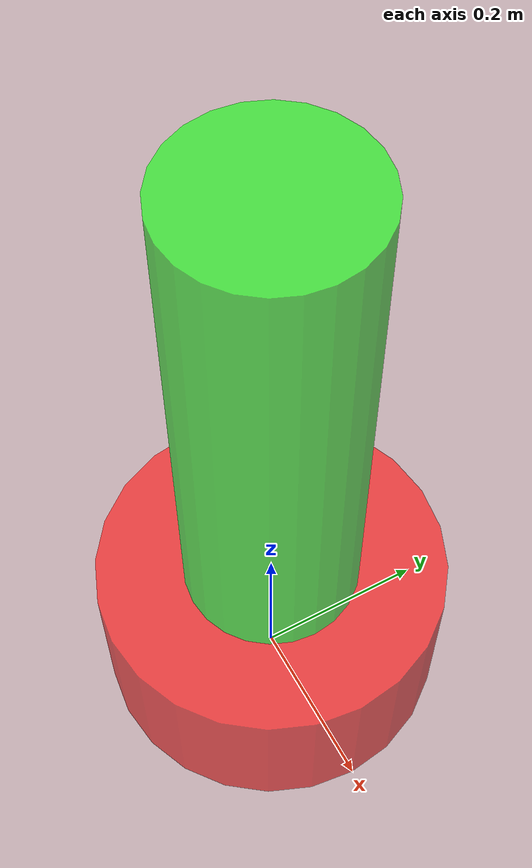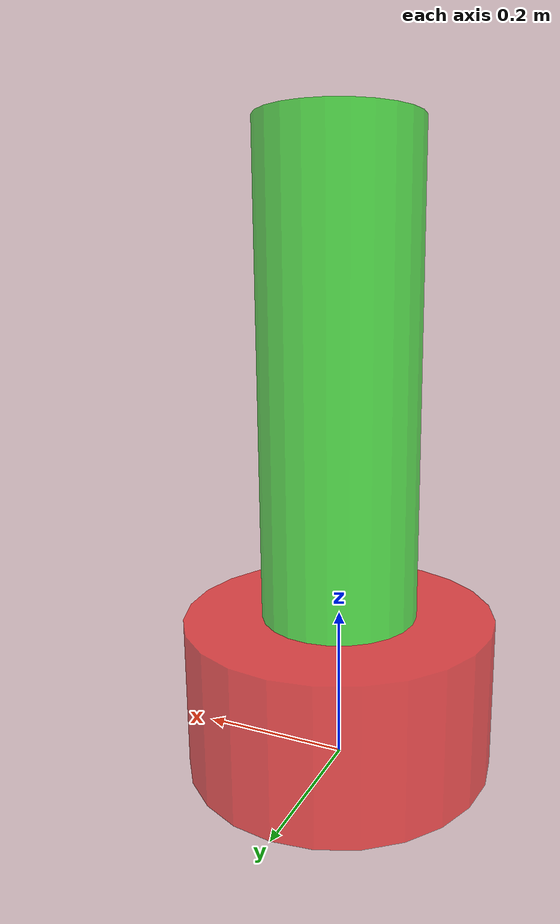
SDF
<sdf version='1.6'>
<world name='default'>
  <model name='simple_screw_joint_sdf'>
    <plugin name='set_joint_velocity_plugin' filename='libSetJointVelocityPlugin.so'/>
    <!-- A simple robot with 2 links and 1 screw joint -->

    <link name='link_0'>
      <pose frame=''>0 0 0.0 0 -0 0</pose>
      <inertial>
        <pose frame=''>0 0 0.1 0 -0 0</pose>
        <mass>0.01</mass>
        <inertia>
          <ixx>0.05</ixx>
          <ixy>0</ixy>
          <ixz>0</ixz>
          <iyy>0.06</iyy>
          <iyz>0</iyz>
          <izz>0.03</izz>
        </inertia>
      </inertial>
      <collision name='link_0_collision'>
        <pose frame=''>0 0 0.1 0 -0 0</pose>
        <geometry>
            <cylinder>
                <length>0.2</length>
                <radius>0.2</radius>
            </cylinder>
        </geometry>
      </collision>
      <visual name='link_0_visual'>
        <pose frame=''>0 0 0.1 0 -0 0</pose>
        <geometry>
            <cylinder>
                <length>0.2</length>
                <radius>0.2</radius>
            </cylinder>
        </geometry>
        <material>
            <ambient>1 0 0 0.6</ambient>
            <diffuse>1 0 0 0.6</diffuse>
        </material>
      </visual>
    </link>

    <link name='link_1'>
      <pose frame=''>0 0 0 0 -0 0</pose>
      <inertial>
        <pose frame=''>0 0 0.5 0 -0 0</pose>
        <mass>0.01</mass>
        <inertia>
          <ixx>0.05</ixx>
          <ixy>0</ixy>
          <ixz>0</ixz>
          <iyy>0.06</iyy>
          <iyz>0</iyz>
          <izz>0.03</izz>
        </inertia>
      </inertial>
      <collision name='link_1_collision'>
        <pose frame=''>0 0 0.5 0 -0 0</pose>
        <geometry>
            <cylinder>
                <length>0.6</length>
                <radius>0.1</radius>
            </cylinder>
        </geometry>
      </collision>
      <visual name='link_1_visual'>
        <pose frame=''>0 0 0.5 0 -0 0</pose>
        <geometry>
            <cylinder>
                <length>0.6</length>
                <radius>0.1</radius>
            </cylinder>
        </geometry>
        <material>
            <ambient>0 1 0 0.6</ambient>
            <diffuse>0 1 0 0.6</diffuse>
        </material>
      </visual>
    </link>

    <joint name='joint_1' type='screw'>
      <pose frame=''>0 0 0.2 0 -0 0</pose>
      <child>link_1</child>
      <parent>link_0</parent>
      <thread_pitch>0.5</thread_pitch>
      <axis>
        <xyz>0 0 1</xyz>
        <limit>
          <effort>300</effort>
          <velocity>10</velocity>
        </limit>
        <dynamics>
          <damping>0.5</damping>
          <friction>0</friction>
          <spring_reference>0</spring_reference>
          <spring_stiffness>0</spring_stiffness>
        </dynamics>
        <use_parent_model_frame>0</use_parent_model_frame>
      </axis>
    </joint>

  </model>
</world>
</sdf>
